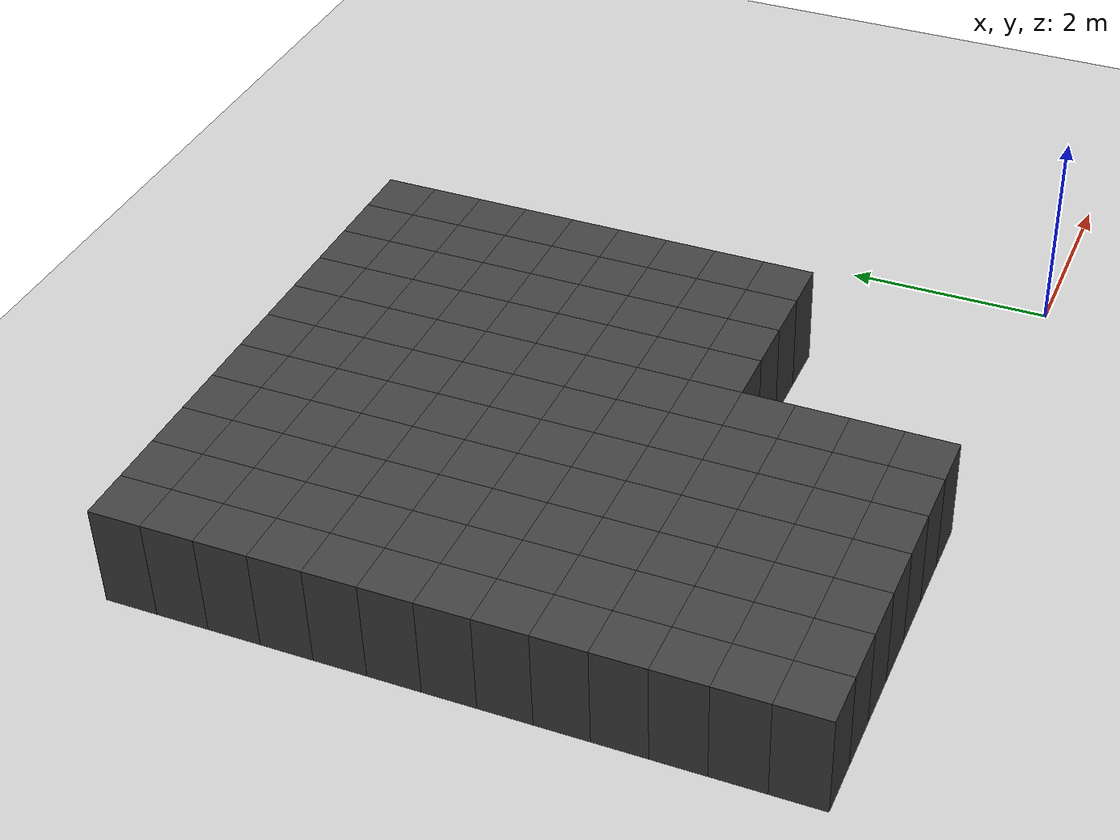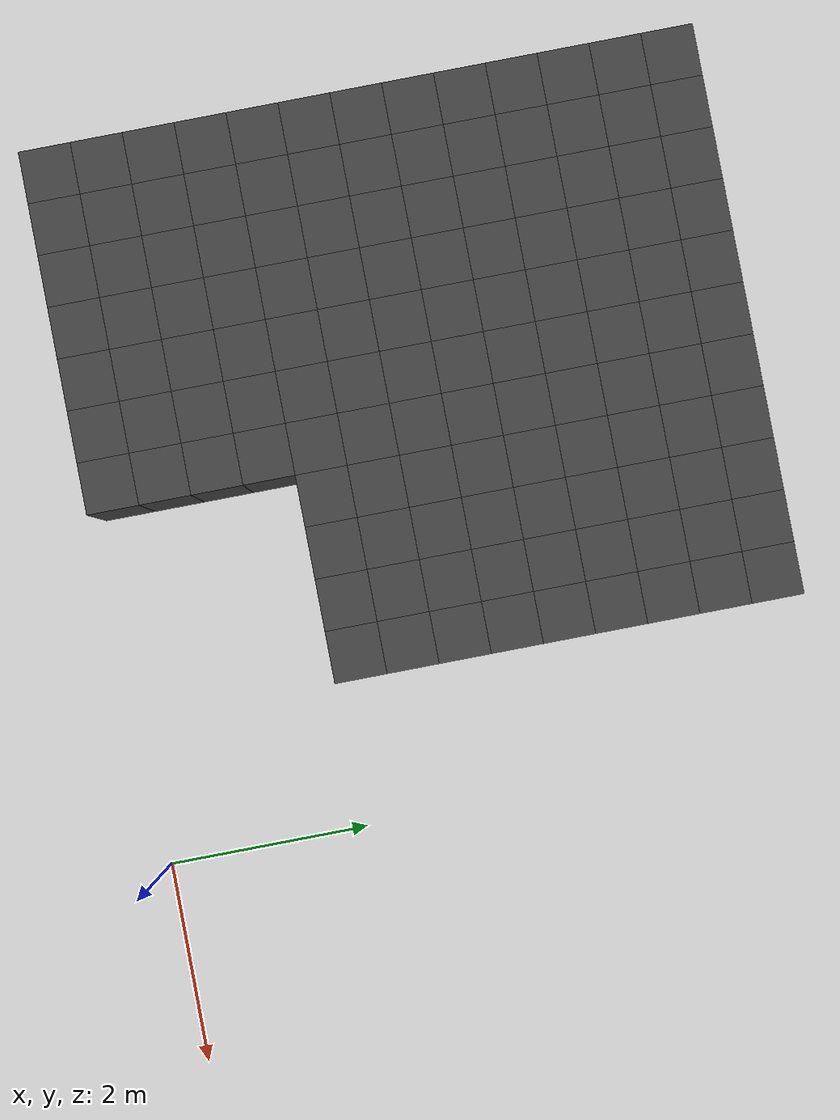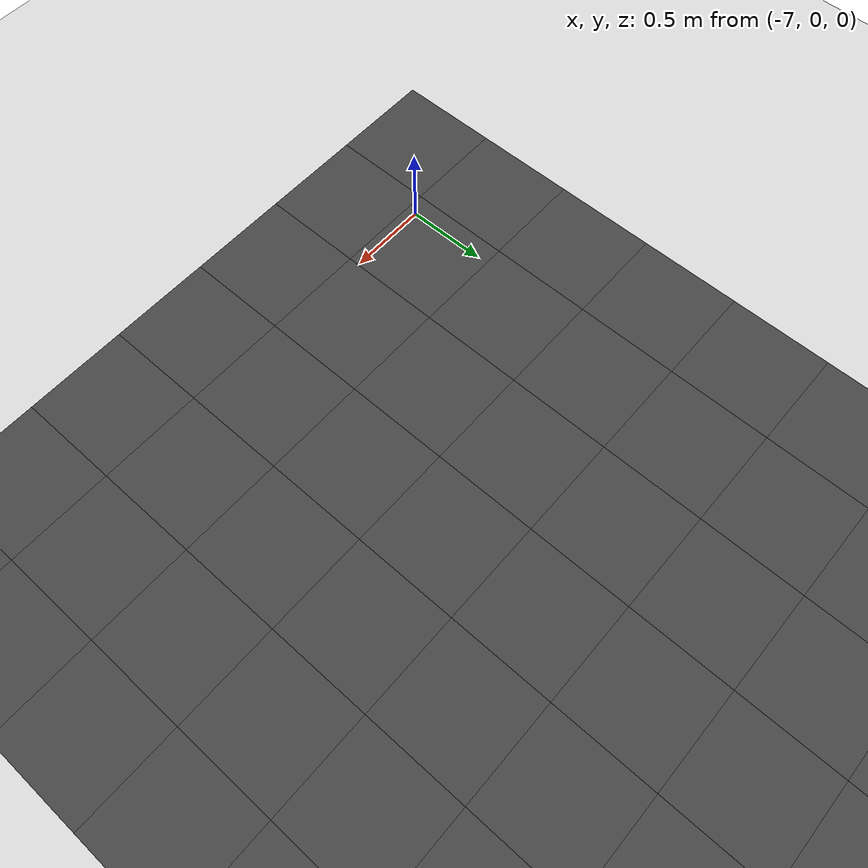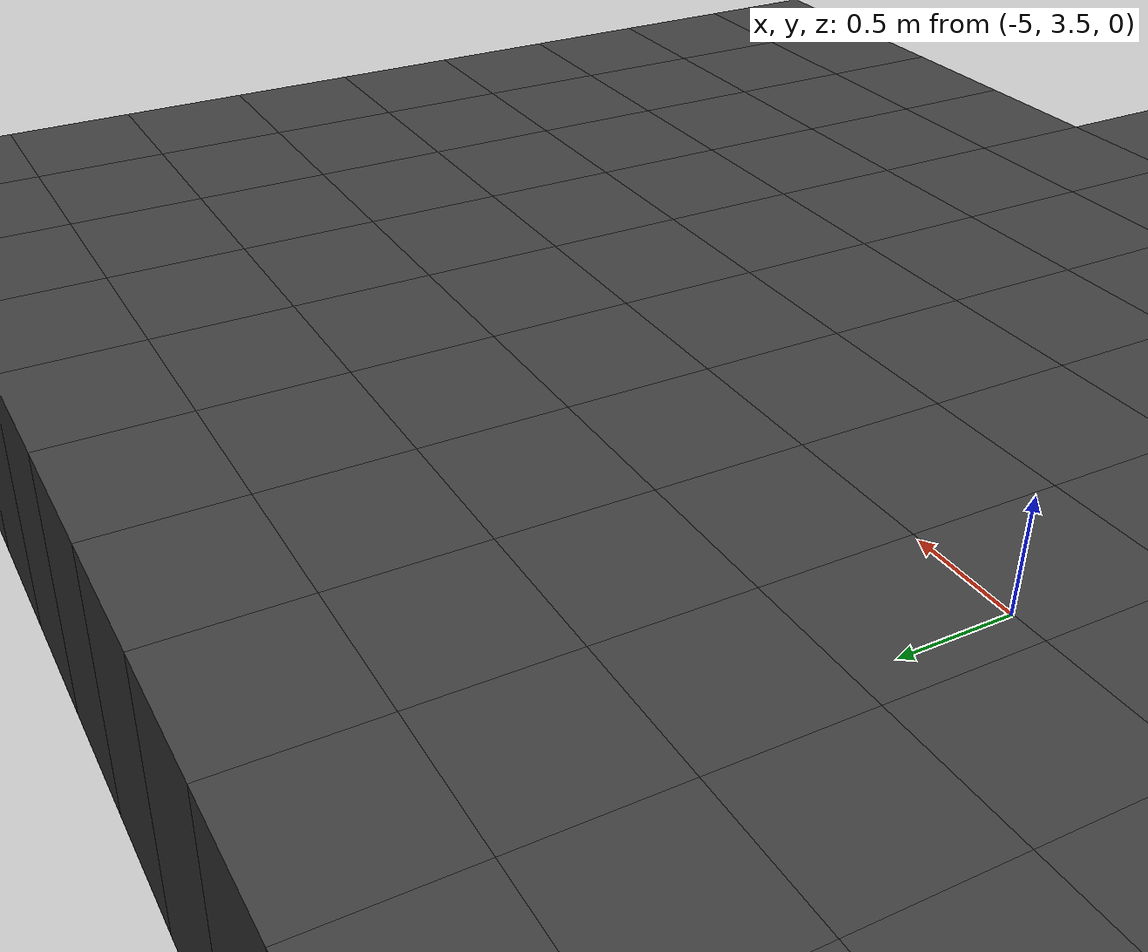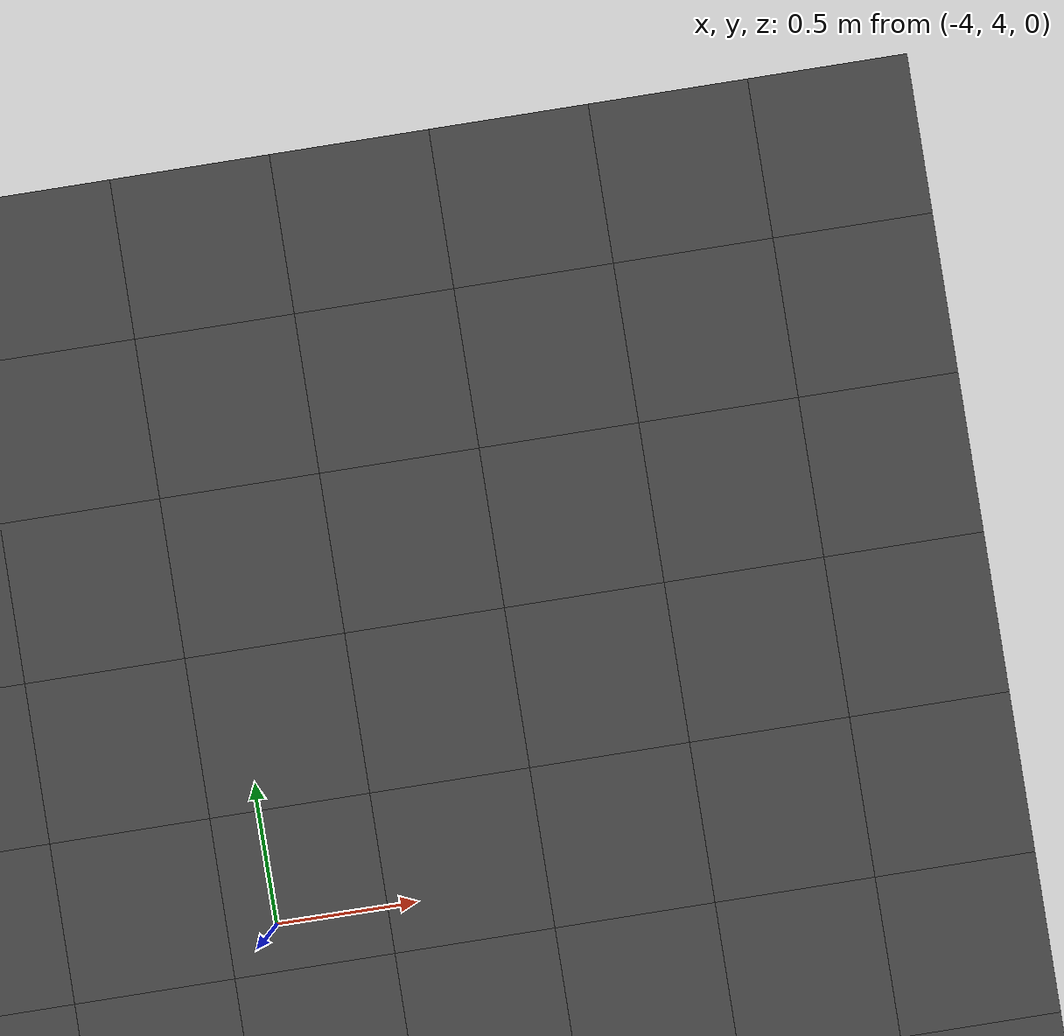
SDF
<sdf version="1.7">
 <world name="map_10777">
  <model name="ground_plane">
   <static>true</static>
   <link name="link">
    <collision name="collision">
     <geometry><plane><normal>0 0 1</normal><size>200 200</size></plane></geometry>
    </collision>
    <visual name="visual">
     <geometry><plane><normal>0 0 1</normal><size>200 200</size></plane></geometry>
     <material><ambient>0.8 0.8 0.8 1</ambient><diffuse>0.8 0.8 0.8 1</diffuse></material>
    </visual>
   </link>
  </model>
  <model name="maze_environment">
   <static>true</static>
   <link name="wall_581">
    <pose>-6.750 6.250 0.500 0 0 0</pose>
    <collision name="col"><geometry><box><size>0.5 0.5 1.0</size></box></geometry></collision>
    <visual name="vis">
     <geometry><box><size>0.5 0.5 1.0</size></box></geometry>
     <material><ambient>0.15 0.15 0.15 1</ambient><diffuse>0.25 0.25 0.25 1</diffuse></material>
    </visual>
   </link>
   <link name="wall_582">
    <pose>-6.250 6.250 0.500 0 0 0</pose>
    <collision name="col"><geometry><box><size>0.5 0.5 1.0</size></box></geometry></collision>
    <visual name="vis">
     <geometry><box><size>0.5 0.5 1.0</size></box></geometry>
     <material><ambient>0.15 0.15 0.15 1</ambient><diffuse>0.25 0.25 0.25 1</diffuse></material>
    </visual>
   </link>
   <link name="wall_583">
    <pose>-5.750 6.250 0.500 0 0 0</pose>
    <collision name="col"><geometry><box><size>0.5 0.5 1.0</size></box></geometry></collision>
    <visual name="vis">
     <geometry><box><size>0.5 0.5 1.0</size></box></geometry>
     <material><ambient>0.15 0.15 0.15 1</ambient><diffuse>0.25 0.25 0.25 1</diffuse></material>
    </visual>
   </link>
   <link name="wall_584">
    <pose>-5.250 6.250 0.500 0 0 0</pose>
    <collision name="col"><geometry><box><size>0.5 0.5 1.0</size></box></geometry></collision>
    <visual name="vis">
     <geometry><box><size>0.5 0.5 1.0</size></box></geometry>
     <material><ambient>0.15 0.15 0.15 1</ambient><diffuse>0.25 0.25 0.25 1</diffuse></material>
    </visual>
   </link>
   <link name="wall_585">
    <pose>-4.750 6.250 0.500 0 0 0</pose>
    <collision name="col"><geometry><box><size>0.5 0.5 1.0</size></box></geometry></collision>
    <visual name="vis">
     <geometry><box><size>0.5 0.5 1.0</size></box></geometry>
     <material><ambient>0.15 0.15 0.15 1</ambient><diffuse>0.25 0.25 0.25 1</diffuse></material>
    </visual>
   </link>
   <link name="wall_586">
    <pose>-4.250 6.250 0.500 0 0 0</pose>
    <collision name="col"><geometry><box><size>0.5 0.5 1.0</size></box></geometry></collision>
    <visual name="vis">
     <geometry><box><size>0.5 0.5 1.0</size></box></geometry>
     <material><ambient>0.15 0.15 0.15 1</ambient><diffuse>0.25 0.25 0.25 1</diffuse></material>
    </visual>
   </link>
   <link name="wall_587">
    <pose>-3.750 6.250 0.500 0 0 0</pose>
    <collision name="col"><geometry><box><size>0.5 0.5 1.0</size></box></geometry></collision>
    <visual name="vis">
     <geometry><box><size>0.5 0.5 1.0</size></box></geometry>
     <material><ambient>0.15 0.15 0.15 1</ambient><diffuse>0.25 0.25 0.25 1</diffuse></material>
    </visual>
   </link>
   <link name="wall_588">
    <pose>-3.250 6.250 0.500 0 0 0</pose>
    <collision name="col"><geometry><box><size>0.5 0.5 1.0</size></box></geometry></collision>
    <visual name="vis">
     <geometry><box><size>0.5 0.5 1.0</size></box></geometry>
     <material><ambient>0.15 0.15 0.15 1</ambient><diffuse>0.25 0.25 0.25 1</diffuse></material>
    </visual>
   </link>
   <link name="wall_589">
    <pose>-2.750 6.250 0.500 0 0 0</pose>
    <collision name="col"><geometry><box><size>0.5 0.5 1.0</size></box></geometry></collision>
    <visual name="vis">
     <geometry><box><size>0.5 0.5 1.0</size></box></geometry>
     <material><ambient>0.15 0.15 0.15 1</ambient><diffuse>0.25 0.25 0.25 1</diffuse></material>
    </visual>
   </link>
   <link name="wall_590">
    <pose>-2.250 6.250 0.500 0 0 0</pose>
    <collision name="col"><geometry><box><size>0.5 0.5 1.0</size></box></geometry></collision>
    <visual name="vis">
     <geometry><box><size>0.5 0.5 1.0</size></box></geometry>
     <material><ambient>0.15 0.15 0.15 1</ambient><diffuse>0.25 0.25 0.25 1</diffuse></material>
    </visual>
   </link>
   <link name="wall_591">
    <pose>-1.750 6.250 0.500 0 0 0</pose>
    <collision name="col"><geometry><box><size>0.5 0.5 1.0</size></box></geometry></collision>
    <visual name="vis">
     <geometry><box><size>0.5 0.5 1.0</size></box></geometry>
     <material><ambient>0.15 0.15 0.15 1</ambient><diffuse>0.25 0.25 0.25 1</diffuse></material>
    </visual>
   </link>
   <link name="wall_622">
    <pose>-6.750 5.750 0.500 0 0 0</pose>
    <collision name="col"><geometry><box><size>0.5 0.5 1.0</size></box></geometry></collision>
    <visual name="vis">
     <geometry><box><size>0.5 0.5 1.0</size></box></geometry>
     <material><ambient>0.15 0.15 0.15 1</ambient><diffuse>0.25 0.25 0.25 1</diffuse></material>
    </visual>
   </link>
   <link name="wall_623">
    <pose>-6.250 5.750 0.500 0 0 0</pose>
    <collision name="col"><geometry><box><size>0.5 0.5 1.0</size></box></geometry></collision>
    <visual name="vis">
     <geometry><box><size>0.5 0.5 1.0</size></box></geometry>
     <material><ambient>0.15 0.15 0.15 1</ambient><diffuse>0.25 0.25 0.25 1</diffuse></material>
    </visual>
   </link>
   <link name="wall_624">
    <pose>-5.750 5.750 0.500 0 0 0</pose>
    <collision name="col"><geometry><box><size>0.5 0.5 1.0</size></box></geometry></collision>
    <visual name="vis">
     <geometry><box><size>0.5 0.5 1.0</size></box></geometry>
     <material><ambient>0.15 0.15 0.15 1</ambient><diffuse>0.25 0.25 0.25 1</diffuse></material>
    </visual>
   </link>
   <link name="wall_625">
    <pose>-5.250 5.750 0.500 0 0 0</pose>
    <collision name="col"><geometry><box><size>0.5 0.5 1.0</size></box></geometry></collision>
    <visual name="vis">
     <geometry><box><size>0.5 0.5 1.0</size></box></geometry>
     <material><ambient>0.15 0.15 0.15 1</ambient><diffuse>0.25 0.25 0.25 1</diffuse></material>
    </visual>
   </link>
   <link name="wall_626">
    <pose>-4.750 5.750 0.500 0 0 0</pose>
    <collision name="col"><geometry><box><size>0.5 0.5 1.0</size></box></geometry></collision>
    <visual name="vis">
     <geometry><box><size>0.5 0.5 1.0</size></box></geometry>
     <material><ambient>0.15 0.15 0.15 1</ambient><diffuse>0.25 0.25 0.25 1</diffuse></material>
    </visual>
   </link>
   <link name="wall_627">
    <pose>-4.250 5.750 0.500 0 0 0</pose>
    <collision name="col"><geometry><box><size>0.5 0.5 1.0</size></box></geometry></collision>
    <visual name="vis">
     <geometry><box><size>0.5 0.5 1.0</size></box></geometry>
     <material><ambient>0.15 0.15 0.15 1</ambient><diffuse>0.25 0.25 0.25 1</diffuse></material>
    </visual>
   </link>
   <link name="wall_628">
    <pose>-3.750 5.750 0.500 0 0 0</pose>
    <collision name="col"><geometry><box><size>0.5 0.5 1.0</size></box></geometry></collision>
    <visual name="vis">
     <geometry><box><size>0.5 0.5 1.0</size></box></geometry>
     <material><ambient>0.15 0.15 0.15 1</ambient><diffuse>0.25 0.25 0.25 1</diffuse></material>
    </visual>
   </link>
   <link name="wall_629">
    <pose>-3.250 5.750 0.500 0 0 0</pose>
    <collision name="col"><geometry><box><size>0.5 0.5 1.0</size></box></geometry></collision>
    <visual name="vis">
     <geometry><box><size>0.5 0.5 1.0</size></box></geometry>
     <material><ambient>0.15 0.15 0.15 1</ambient><diffuse>0.25 0.25 0.25 1</diffuse></material>
    </visual>
   </link>
   <link name="wall_630">
    <pose>-2.750 5.750 0.500 0 0 0</pose>
    <collision name="col"><geometry><box><size>0.5 0.5 1.0</size></box></geometry></collision>
    <visual name="vis">
     <geometry><box><size>0.5 0.5 1.0</size></box></geometry>
     <material><ambient>0.15 0.15 0.15 1</ambient><diffuse>0.25 0.25 0.25 1</diffuse></material>
    </visual>
   </link>
   <link name="wall_631">
    <pose>-2.250 5.750 0.500 0 0 0</pose>
    <collision name="col"><geometry><box><size>0.5 0.5 1.0</size></box></geometry></collision>
    <visual name="vis">
     <geometry><box><size>0.5 0.5 1.0</size></box></geometry>
     <material><ambient>0.15 0.15 0.15 1</ambient><diffuse>0.25 0.25 0.25 1</diffuse></material>
    </visual>
   </link>
   <link name="wall_632">
    <pose>-1.750 5.750 0.500 0 0 0</pose>
    <collision name="col"><geometry><box><size>0.5 0.5 1.0</size></box></geometry></collision>
    <visual name="vis">
     <geometry><box><size>0.5 0.5 1.0</size></box></geometry>
     <material><ambient>0.15 0.15 0.15 1</ambient><diffuse>0.25 0.25 0.25 1</diffuse></material>
    </visual>
   </link>
   <link name="wall_664">
    <pose>-6.750 5.250 0.500 0 0 0</pose>
    <collision name="col"><geometry><box><size>0.5 0.5 1.0</size></box></geometry></collision>
    <visual name="vis">
     <geometry><box><size>0.5 0.5 1.0</size></box></geometry>
     <material><ambient>0.15 0.15 0.15 1</ambient><diffuse>0.25 0.25 0.25 1</diffuse></material>
    </visual>
   </link>
   <link name="wall_665">
    <pose>-6.250 5.250 0.500 0 0 0</pose>
    <collision name="col"><geometry><box><size>0.5 0.5 1.0</size></box></geometry></collision>
    <visual name="vis">
     <geometry><box><size>0.5 0.5 1.0</size></box></geometry>
     <material><ambient>0.15 0.15 0.15 1</ambient><diffuse>0.25 0.25 0.25 1</diffuse></material>
    </visual>
   </link>
   <link name="wall_666">
    <pose>-5.750 5.250 0.500 0 0 0</pose>
    <collision name="col"><geometry><box><size>0.5 0.5 1.0</size></box></geometry></collision>
    <visual name="vis">
     <geometry><box><size>0.5 0.5 1.0</size></box></geometry>
     <material><ambient>0.15 0.15 0.15 1</ambient><diffuse>0.25 0.25 0.25 1</diffuse></material>
    </visual>
   </link>
   <link name="wall_667">
    <pose>-5.250 5.250 0.500 0 0 0</pose>
    <collision name="col"><geometry><box><size>0.5 0.5 1.0</size></box></geometry></collision>
    <visual name="vis">
     <geometry><box><size>0.5 0.5 1.0</size></box></geometry>
     <material><ambient>0.15 0.15 0.15 1</ambient><diffuse>0.25 0.25 0.25 1</diffuse></material>
    </visual>
   </link>
   <link name="wall_668">
    <pose>-4.750 5.250 0.500 0 0 0</pose>
    <collision name="col"><geometry><box><size>0.5 0.5 1.0</size></box></geometry></collision>
    <visual name="vis">
     <geometry><box><size>0.5 0.5 1.0</size></box></geometry>
     <material><ambient>0.15 0.15 0.15 1</ambient><diffuse>0.25 0.25 0.25 1</diffuse></material>
    </visual>
   </link>
   <link name="wall_669">
    <pose>-4.250 5.250 0.500 0 0 0</pose>
    <collision name="col"><geometry><box><size>0.5 0.5 1.0</size></box></geometry></collision>
    <visual name="vis">
     <geometry><box><size>0.5 0.5 1.0</size></box></geometry>
     <material><ambient>0.15 0.15 0.15 1</ambient><diffuse>0.25 0.25 0.25 1</diffuse></material>
    </visual>
   </link>
   <link name="wall_670">
    <pose>-3.750 5.250 0.500 0 0 0</pose>
    <collision name="col"><geometry><box><size>0.5 0.5 1.0</size></box></geometry></collision>
    <visual name="vis">
     <geometry><box><size>0.5 0.5 1.0</size></box></geometry>
     <material><ambient>0.15 0.15 0.15 1</ambient><diffuse>0.25 0.25 0.25 1</diffuse></material>
    </visual>
   </link>
   <link name="wall_671">
    <pose>-3.250 5.250 0.500 0 0 0</pose>
    <collision name="col"><geometry><box><size>0.5 0.5 1.0</size></box></geometry></collision>
    <visual name="vis">
     <geometry><box><size>0.5 0.5 1.0</size></box></geometry>
     <material><ambient>0.15 0.15 0.15 1</ambient><diffuse>0.25 0.25 0.25 1</diffuse></material>
    </visual>
   </link>
   <link name="wall_672">
    <pose>-2.750 5.250 0.500 0 0 0</pose>
    <collision name="col"><geometry><box><size>0.5 0.5 1.0</size></box></geometry></collision>
    <visual name="vis">
     <geometry><box><size>0.5 0.5 1.0</size></box></geometry>
     <material><ambient>0.15 0.15 0.15 1</ambient><diffuse>0.25 0.25 0.25 1</diffuse></material>
    </visual>
   </link>
   <link name="wall_673">
    <pose>-2.250 5.250 0.500 0 0 0</pose>
    <collision name="col"><geometry><box><size>0.5 0.5 1.0</size></box></geometry></collision>
    <visual name="vis">
     <geometry><box><size>0.5 0.5 1.0</size></box></geometry>
     <material><ambient>0.15 0.15 0.15 1</ambient><diffuse>0.25 0.25 0.25 1</diffuse></material>
    </visual>
   </link>
   <link name="wall_674">
    <pose>-1.750 5.250 0.500 0 0 0</pose>
    <collision name="col"><geometry><box><size>0.5 0.5 1.0</size></box></geometry></collision>
    <visual name="vis">
     <geometry><box><size>0.5 0.5 1.0</size></box></geometry>
     <material><ambient>0.15 0.15 0.15 1</ambient><diffuse>0.25 0.25 0.25 1</diffuse></material>
    </visual>
   </link>
   <link name="wall_706">
    <pose>-6.750 4.750 0.500 0 0 0</pose>
    <collision name="col"><geometry><box><size>0.5 0.5 1.0</size></box></geometry></collision>
    <visual name="vis">
     <geometry><box><size>0.5 0.5 1.0</size></box></geometry>
     <material><ambient>0.15 0.15 0.15 1</ambient><diffuse>0.25 0.25 0.25 1</diffuse></material>
    </visual>
   </link>
   <link name="wall_707">
    <pose>-6.250 4.750 0.500 0 0 0</pose>
    <collision name="col"><geometry><box><size>0.5 0.5 1.0</size></box></geometry></collision>
    <visual name="vis">
     <geometry><box><size>0.5 0.5 1.0</size></box></geometry>
     <material><ambient>0.15 0.15 0.15 1</ambient><diffuse>0.25 0.25 0.25 1</diffuse></material>
    </visual>
   </link>
   <link name="wall_708">
    <pose>-5.750 4.750 0.500 0 0 0</pose>
    <collision name="col"><geometry><box><size>0.5 0.5 1.0</size></box></geometry></collision>
    <visual name="vis">
     <geometry><box><size>0.5 0.5 1.0</size></box></geometry>
     <material><ambient>0.15 0.15 0.15 1</ambient><diffuse>0.25 0.25 0.25 1</diffuse></material>
    </visual>
   </link>
   <link name="wall_709">
    <pose>-5.250 4.750 0.500 0 0 0</pose>
    <collision name="col"><geometry><box><size>0.5 0.5 1.0</size></box></geometry></collision>
    <visual name="vis">
     <geometry><box><size>0.5 0.5 1.0</size></box></geometry>
     <material><ambient>0.15 0.15 0.15 1</ambient><diffuse>0.25 0.25 0.25 1</diffuse></material>
    </visual>
   </link>
   <link name="wall_710">
    <pose>-4.750 4.750 0.500 0 0 0</pose>
    <collision name="col"><geometry><box><size>0.5 0.5 1.0</size></box></geometry></collision>
    <visual name="vis">
     <geometry><box><size>0.5 0.5 1.0</size></box></geometry>
     <material><ambient>0.15 0.15 0.15 1</ambient><diffuse>0.25 0.25 0.25 1</diffuse></material>
    </visual>
   </link>
   <link name="wall_711">
    <pose>-4.250 4.750 0.500 0 0 0</pose>
    <collision name="col"><geometry><box><size>0.5 0.5 1.0</size></box></geometry></collision>
    <visual name="vis">
     <geometry><box><size>0.5 0.5 1.0</size></box></geometry>
     <material><ambient>0.15 0.15 0.15 1</ambient><diffuse>0.25 0.25 0.25 1</diffuse></material>
    </visual>
   </link>
   <link name="wall_712">
    <pose>-3.750 4.750 0.500 0 0 0</pose>
    <collision name="col"><geometry><box><size>0.5 0.5 1.0</size></box></geometry></collision>
    <visual name="vis">
     <geometry><box><size>0.5 0.5 1.0</size></box></geometry>
     <material><ambient>0.15 0.15 0.15 1</ambient><diffuse>0.25 0.25 0.25 1</diffuse></material>
    </visual>
   </link>
   <link name="wall_713">
    <pose>-3.250 4.750 0.500 0 0 0</pose>
    <collision name="col"><geometry><box><size>0.5 0.5 1.0</size></box></geometry></collision>
    <visual name="vis">
     <geometry><box><size>0.5 0.5 1.0</size></box></geometry>
     <material><ambient>0.15 0.15 0.15 1</ambient><diffuse>0.25 0.25 0.25 1</diffuse></material>
    </visual>
   </link>
   <link name="wall_714">
    <pose>-2.750 4.750 0.500 0 0 0</pose>
    <collision name="col"><geometry><box><size>0.5 0.5 1.0</size></box></geometry></collision>
    <visual name="vis">
     <geometry><box><size>0.5 0.5 1.0</size></box></geometry>
     <material><ambient>0.15 0.15 0.15 1</ambient><diffuse>0.25 0.25 0.25 1</diffuse></material>
    </visual>
   </link>
   <link name="wall_715">
    <pose>-2.250 4.750 0.500 0 0 0</pose>
    <collision name="col"><geometry><box><size>0.5 0.5 1.0</size></box></geometry></collision>
    <visual name="vis">
     <geometry><box><size>0.5 0.5 1.0</size></box></geometry>
     <material><ambient>0.15 0.15 0.15 1</ambient><diffuse>0.25 0.25 0.25 1</diffuse></material>
    </visual>
   </link>
   <link name="wall_716">
    <pose>-1.750 4.750 0.500 0 0 0</pose>
    <collision name="col"><geometry><box><size>0.5 0.5 1.0</size></box></geometry></collision>
    <visual name="vis">
     <geometry><box><size>0.5 0.5 1.0</size></box></geometry>
     <material><ambient>0.15 0.15 0.15 1</ambient><diffuse>0.25 0.25 0.25 1</diffuse></material>
    </visual>
   </link>
   <link name="wall_754">
    <pose>-6.750 4.250 0.500 0 0 0</pose>
    <collision name="col"><geometry><box><size>0.5 0.5 1.0</size></box></geometry></collision>
    <visual name="vis">
     <geometry><box><size>0.5 0.5 1.0</size></box></geometry>
     <material><ambient>0.15 0.15 0.15 1</ambient><diffuse>0.25 0.25 0.25 1</diffuse></material>
    </visual>
   </link>
   <link name="wall_755">
    <pose>-6.250 4.250 0.500 0 0 0</pose>
    <collision name="col"><geometry><box><size>0.5 0.5 1.0</size></box></geometry></collision>
    <visual name="vis">
     <geometry><box><size>0.5 0.5 1.0</size></box></geometry>
     <material><ambient>0.15 0.15 0.15 1</ambient><diffuse>0.25 0.25 0.25 1</diffuse></material>
    </visual>
   </link>
   <link name="wall_756">
    <pose>-5.750 4.250 0.500 0 0 0</pose>
    <collision name="col"><geometry><box><size>0.5 0.5 1.0</size></box></geometry></collision>
    <visual name="vis">
     <geometry><box><size>0.5 0.5 1.0</size></box></geometry>
     <material><ambient>0.15 0.15 0.15 1</ambient><diffuse>0.25 0.25 0.25 1</diffuse></material>
    </visual>
   </link>
   <link name="wall_757">
    <pose>-5.250 4.250 0.500 0 0 0</pose>
    <collision name="col"><geometry><box><size>0.5 0.5 1.0</size></box></geometry></collision>
    <visual name="vis">
     <geometry><box><size>0.5 0.5 1.0</size></box></geometry>
     <material><ambient>0.15 0.15 0.15 1</ambient><diffuse>0.25 0.25 0.25 1</diffuse></material>
    </visual>
   </link>
   <link name="wall_758">
    <pose>-4.750 4.250 0.500 0 0 0</pose>
    <collision name="col"><geometry><box><size>0.5 0.5 1.0</size></box></geometry></collision>
    <visual name="vis">
     <geometry><box><size>0.5 0.5 1.0</size></box></geometry>
     <material><ambient>0.15 0.15 0.15 1</ambient><diffuse>0.25 0.25 0.25 1</diffuse></material>
    </visual>
   </link>
   <link name="wall_759">
    <pose>-4.250 4.250 0.500 0 0 0</pose>
    <collision name="col"><geometry><box><size>0.5 0.5 1.0</size></box></geometry></collision>
    <visual name="vis">
     <geometry><box><size>0.5 0.5 1.0</size></box></geometry>
     <material><ambient>0.15 0.15 0.15 1</ambient><diffuse>0.25 0.25 0.25 1</diffuse></material>
    </visual>
   </link>
   <link name="wall_760">
    <pose>-3.750 4.250 0.500 0 0 0</pose>
    <collision name="col"><geometry><box><size>0.5 0.5 1.0</size></box></geometry></collision>
    <visual name="vis">
     <geometry><box><size>0.5 0.5 1.0</size></box></geometry>
     <material><ambient>0.15 0.15 0.15 1</ambient><diffuse>0.25 0.25 0.25 1</diffuse></material>
    </visual>
   </link>
   <link name="wall_761">
    <pose>-3.250 4.250 0.500 0 0 0</pose>
    <collision name="col"><geometry><box><size>0.5 0.5 1.0</size></box></geometry></collision>
    <visual name="vis">
     <geometry><box><size>0.5 0.5 1.0</size></box></geometry>
     <material><ambient>0.15 0.15 0.15 1</ambient><diffuse>0.25 0.25 0.25 1</diffuse></material>
    </visual>
   </link>
   <link name="wall_762">
    <pose>-2.750 4.250 0.500 0 0 0</pose>
    <collision name="col"><geometry><box><size>0.5 0.5 1.0</size></box></geometry></collision>
    <visual name="vis">
     <geometry><box><size>0.5 0.5 1.0</size></box></geometry>
     <material><ambient>0.15 0.15 0.15 1</ambient><diffuse>0.25 0.25 0.25 1</diffuse></material>
    </visual>
   </link>
   <link name="wall_763">
    <pose>-2.250 4.250 0.500 0 0 0</pose>
    <collision name="col"><geometry><box><size>0.5 0.5 1.0</size></box></geometry></collision>
    <visual name="vis">
     <geometry><box><size>0.5 0.5 1.0</size></box></geometry>
     <material><ambient>0.15 0.15 0.15 1</ambient><diffuse>0.25 0.25 0.25 1</diffuse></material>
    </visual>
   </link>
   <link name="wall_764">
    <pose>-1.750 4.250 0.500 0 0 0</pose>
    <collision name="col"><geometry><box><size>0.5 0.5 1.0</size></box></geometry></collision>
    <visual name="vis">
     <geometry><box><size>0.5 0.5 1.0</size></box></geometry>
     <material><ambient>0.15 0.15 0.15 1</ambient><diffuse>0.25 0.25 0.25 1</diffuse></material>
    </visual>
   </link>
   <link name="wall_802">
    <pose>-6.750 3.750 0.500 0 0 0</pose>
    <collision name="col"><geometry><box><size>0.5 0.5 1.0</size></box></geometry></collision>
    <visual name="vis">
     <geometry><box><size>0.5 0.5 1.0</size></box></geometry>
     <material><ambient>0.15 0.15 0.15 1</ambient><diffuse>0.25 0.25 0.25 1</diffuse></material>
    </visual>
   </link>
   <link name="wall_803">
    <pose>-6.250 3.750 0.500 0 0 0</pose>
    <collision name="col"><geometry><box><size>0.5 0.5 1.0</size></box></geometry></collision>
    <visual name="vis">
     <geometry><box><size>0.5 0.5 1.0</size></box></geometry>
     <material><ambient>0.15 0.15 0.15 1</ambient><diffuse>0.25 0.25 0.25 1</diffuse></material>
    </visual>
   </link>
   <link name="wall_804">
    <pose>-5.750 3.750 0.500 0 0 0</pose>
    <collision name="col"><geometry><box><size>0.5 0.5 1.0</size></box></geometry></collision>
    <visual name="vis">
     <geometry><box><size>0.5 0.5 1.0</size></box></geometry>
     <material><ambient>0.15 0.15 0.15 1</ambient><diffuse>0.25 0.25 0.25 1</diffuse></material>
    </visual>
   </link>
   <link name="wall_805">
    <pose>-5.250 3.750 0.500 0 0 0</pose>
    <collision name="col"><geometry><box><size>0.5 0.5 1.0</size></box></geometry></collision>
    <visual name="vis">
     <geometry><box><size>0.5 0.5 1.0</size></box></geometry>
     <material><ambient>0.15 0.15 0.15 1</ambient><diffuse>0.25 0.25 0.25 1</diffuse></material>
    </visual>
   </link>
   <link name="wall_806">
    <pose>-4.750 3.750 0.500 0 0 0</pose>
    <collision name="col"><geometry><box><size>0.5 0.5 1.0</size></box></geometry></collision>
    <visual name="vis">
     <geometry><box><size>0.5 0.5 1.0</size></box></geometry>
     <material><ambient>0.15 0.15 0.15 1</ambient><diffuse>0.25 0.25 0.25 1</diffuse></material>
    </visual>
   </link>
   <link name="wall_807">
    <pose>-4.250 3.750 0.500 0 0 0</pose>
    <collision name="col"><geometry><box><size>0.5 0.5 1.0</size></box></geometry></collision>
    <visual name="vis">
     <geometry><box><size>0.5 0.5 1.0</size></box></geometry>
     <material><ambient>0.15 0.15 0.15 1</ambient><diffuse>0.25 0.25 0.25 1</diffuse></material>
    </visual>
   </link>
   <link name="wall_808">
    <pose>-3.750 3.750 0.500 0 0 0</pose>
    <collision name="col"><geometry><box><size>0.5 0.5 1.0</size></box></geometry></collision>
    <visual name="vis">
     <geometry><box><size>0.5 0.5 1.0</size></box></geometry>
     <material><ambient>0.15 0.15 0.15 1</ambient><diffuse>0.25 0.25 0.25 1</diffuse></material>
    </visual>
   </link>
   <link name="wall_809">
    <pose>-3.250 3.750 0.500 0 0 0</pose>
    <collision name="col"><geometry><box><size>0.5 0.5 1.0</size></box></geometry></collision>
    <visual name="vis">
     <geometry><box><size>0.5 0.5 1.0</size></box></geometry>
     <material><ambient>0.15 0.15 0.15 1</ambient><diffuse>0.25 0.25 0.25 1</diffuse></material>
    </visual>
   </link>
   <link name="wall_810">
    <pose>-2.750 3.750 0.500 0 0 0</pose>
    <collision name="col"><geometry><box><size>0.5 0.5 1.0</size></box></geometry></collision>
    <visual name="vis">
     <geometry><box><size>0.5 0.5 1.0</size></box></geometry>
     <material><ambient>0.15 0.15 0.15 1</ambient><diffuse>0.25 0.25 0.25 1</diffuse></material>
    </visual>
   </link>
   <link name="wall_811">
    <pose>-2.250 3.750 0.500 0 0 0</pose>
    <collision name="col"><geometry><box><size>0.5 0.5 1.0</size></box></geometry></collision>
    <visual name="vis">
     <geometry><box><size>0.5 0.5 1.0</size></box></geometry>
     <material><ambient>0.15 0.15 0.15 1</ambient><diffuse>0.25 0.25 0.25 1</diffuse></material>
    </visual>
   </link>
   <link name="wall_812">
    <pose>-1.750 3.750 0.500 0 0 0</pose>
    <collision name="col"><geometry><box><size>0.5 0.5 1.0</size></box></geometry></collision>
    <visual name="vis">
     <geometry><box><size>0.5 0.5 1.0</size></box></geometry>
     <material><ambient>0.15 0.15 0.15 1</ambient><diffuse>0.25 0.25 0.25 1</diffuse></material>
    </visual>
   </link>
   <link name="wall_850">
    <pose>-6.750 3.250 0.500 0 0 0</pose>
    <collision name="col"><geometry><box><size>0.5 0.5 1.0</size></box></geometry></collision>
    <visual name="vis">
     <geometry><box><size>0.5 0.5 1.0</size></box></geometry>
     <material><ambient>0.15 0.15 0.15 1</ambient><diffuse>0.25 0.25 0.25 1</diffuse></material>
    </visual>
   </link>
   <link name="wall_851">
    <pose>-6.250 3.250 0.500 0 0 0</pose>
    <collision name="col"><geometry><box><size>0.5 0.5 1.0</size></box></geometry></collision>
    <visual name="vis">
     <geometry><box><size>0.5 0.5 1.0</size></box></geometry>
     <material><ambient>0.15 0.15 0.15 1</ambient><diffuse>0.25 0.25 0.25 1</diffuse></material>
    </visual>
   </link>
   <link name="wall_852">
    <pose>-5.750 3.250 0.500 0 0 0</pose>
    <collision name="col"><geometry><box><size>0.5 0.5 1.0</size></box></geometry></collision>
    <visual name="vis">
     <geometry><box><size>0.5 0.5 1.0</size></box></geometry>
     <material><ambient>0.15 0.15 0.15 1</ambient><diffuse>0.25 0.25 0.25 1</diffuse></material>
    </visual>
   </link>
   <link name="wall_853">
    <pose>-5.250 3.250 0.500 0 0 0</pose>
    <collision name="col"><geometry><box><size>0.5 0.5 1.0</size></box></geometry></collision>
    <visual name="vis">
     <geometry><box><size>0.5 0.5 1.0</size></box></geometry>
     <material><ambient>0.15 0.15 0.15 1</ambient><diffuse>0.25 0.25 0.25 1</diffuse></material>
    </visual>
   </link>
   <link name="wall_854">
    <pose>-4.750 3.250 0.500 0 0 0</pose>
    <collision name="col"><geometry><box><size>0.5 0.5 1.0</size></box></geometry></collision>
    <visual name="vis">
     <geometry><box><size>0.5 0.5 1.0</size></box></geometry>
     <material><ambient>0.15 0.15 0.15 1</ambient><diffuse>0.25 0.25 0.25 1</diffuse></material>
    </visual>
   </link>
   <link name="wall_855">
    <pose>-4.250 3.250 0.500 0 0 0</pose>
    <collision name="col"><geometry><box><size>0.5 0.5 1.0</size></box></geometry></collision>
    <visual name="vis">
     <geometry><box><size>0.5 0.5 1.0</size></box></geometry>
     <material><ambient>0.15 0.15 0.15 1</ambient><diffuse>0.25 0.25 0.25 1</diffuse></material>
    </visual>
   </link>
   <link name="wall_856">
    <pose>-3.750 3.250 0.500 0 0 0</pose>
    <collision name="col"><geometry><box><size>0.5 0.5 1.0</size></box></geometry></collision>
    <visual name="vis">
     <geometry><box><size>0.5 0.5 1.0</size></box></geometry>
     <material><ambient>0.15 0.15 0.15 1</ambient><diffuse>0.25 0.25 0.25 1</diffuse></material>
    </visual>
   </link>
   <link name="wall_857">
    <pose>-3.250 3.250 0.500 0 0 0</pose>
    <collision name="col"><geometry><box><size>0.5 0.5 1.0</size></box></geometry></collision>
    <visual name="vis">
     <geometry><box><size>0.5 0.5 1.0</size></box></geometry>
     <material><ambient>0.15 0.15 0.15 1</ambient><diffuse>0.25 0.25 0.25 1</diffuse></material>
    </visual>
   </link>
   <link name="wall_858">
    <pose>-2.750 3.250 0.500 0 0 0</pose>
    <collision name="col"><geometry><box><size>0.5 0.5 1.0</size></box></geometry></collision>
    <visual name="vis">
     <geometry><box><size>0.5 0.5 1.0</size></box></geometry>
     <material><ambient>0.15 0.15 0.15 1</ambient><diffuse>0.25 0.25 0.25 1</diffuse></material>
    </visual>
   </link>
   <link name="wall_859">
    <pose>-2.250 3.250 0.500 0 0 0</pose>
    <collision name="col"><geometry><box><size>0.5 0.5 1.0</size></box></geometry></collision>
    <visual name="vis">
     <geometry><box><size>0.5 0.5 1.0</size></box></geometry>
     <material><ambient>0.15 0.15 0.15 1</ambient><diffuse>0.25 0.25 0.25 1</diffuse></material>
    </visual>
   </link>
   <link name="wall_860">
    <pose>-1.750 3.250 0.500 0 0 0</pose>
    <collision name="col"><geometry><box><size>0.5 0.5 1.0</size></box></geometry></collision>
    <visual name="vis">
     <geometry><box><size>0.5 0.5 1.0</size></box></geometry>
     <material><ambient>0.15 0.15 0.15 1</ambient><diffuse>0.25 0.25 0.25 1</diffuse></material>
    </visual>
   </link>
   <link name="wall_898">
    <pose>-6.750 2.750 0.500 0 0 0</pose>
    <collision name="col"><geometry><box><size>0.5 0.5 1.0</size></box></geometry></collision>
    <visual name="vis">
     <geometry><box><size>0.5 0.5 1.0</size></box></geometry>
     <material><ambient>0.15 0.15 0.15 1</ambient><diffuse>0.25 0.25 0.25 1</diffuse></material>
    </visual>
   </link>
   <link name="wall_899">
    <pose>-6.250 2.750 0.500 0 0 0</pose>
    <collision name="col"><geometry><box><size>0.5 0.5 1.0</size></box></geometry></collision>
    <visual name="vis">
     <geometry><box><size>0.5 0.5 1.0</size></box></geometry>
     <material><ambient>0.15 0.15 0.15 1</ambient><diffuse>0.25 0.25 0.25 1</diffuse></material>
    </visual>
   </link>
   <link name="wall_900">
    <pose>-5.750 2.750 0.500 0 0 0</pose>
    <collision name="col"><geometry><box><size>0.5 0.5 1.0</size></box></geometry></collision>
    <visual name="vis">
     <geometry><box><size>0.5 0.5 1.0</size></box></geometry>
     <material><ambient>0.15 0.15 0.15 1</ambient><diffuse>0.25 0.25 0.25 1</diffuse></material>
    </visual>
   </link>
   <link name="wall_901">
    <pose>-5.250 2.750 0.500 0 0 0</pose>
    <collision name="col"><geometry><box><size>0.5 0.5 1.0</size></box></geometry></collision>
    <visual name="vis">
     <geometry><box><size>0.5 0.5 1.0</size></box></geometry>
     <material><ambient>0.15 0.15 0.15 1</ambient><diffuse>0.25 0.25 0.25 1</diffuse></material>
    </visual>
   </link>
   <link name="wall_902">
    <pose>-4.750 2.750 0.500 0 0 0</pose>
    <collision name="col"><geometry><box><size>0.5 0.5 1.0</size></box></geometry></collision>
    <visual name="vis">
     <geometry><box><size>0.5 0.5 1.0</size></box></geometry>
     <material><ambient>0.15 0.15 0.15 1</ambient><diffuse>0.25 0.25 0.25 1</diffuse></material>
    </visual>
   </link>
   <link name="wall_903">
    <pose>-4.250 2.750 0.500 0 0 0</pose>
    <collision name="col"><geometry><box><size>0.5 0.5 1.0</size></box></geometry></collision>
    <visual name="vis">
     <geometry><box><size>0.5 0.5 1.0</size></box></geometry>
     <material><ambient>0.15 0.15 0.15 1</ambient><diffuse>0.25 0.25 0.25 1</diffuse></material>
    </visual>
   </link>
   <link name="wall_904">
    <pose>-3.750 2.750 0.500 0 0 0</pose>
    <collision name="col"><geometry><box><size>0.5 0.5 1.0</size></box></geometry></collision>
    <visual name="vis">
     <geometry><box><size>0.5 0.5 1.0</size></box></geometry>
     <material><ambient>0.15 0.15 0.15 1</ambient><diffuse>0.25 0.25 0.25 1</diffuse></material>
    </visual>
   </link>
   <link name="wall_905">
    <pose>-3.250 2.750 0.500 0 0 0</pose>
    <collision name="col"><geometry><box><size>0.5 0.5 1.0</size></box></geometry></collision>
    <visual name="vis">
     <geometry><box><size>0.5 0.5 1.0</size></box></geometry>
     <material><ambient>0.15 0.15 0.15 1</ambient><diffuse>0.25 0.25 0.25 1</diffuse></material>
    </visual>
   </link>
   <link name="wall_906">
    <pose>-2.750 2.750 0.500 0 0 0</pose>
    <collision name="col"><geometry><box><size>0.5 0.5 1.0</size></box></geometry></collision>
    <visual name="vis">
     <geometry><box><size>0.5 0.5 1.0</size></box></geometry>
     <material><ambient>0.15 0.15 0.15 1</ambient><diffuse>0.25 0.25 0.25 1</diffuse></material>
    </visual>
   </link>
   <link name="wall_907">
    <pose>-2.250 2.750 0.500 0 0 0</pose>
    <collision name="col"><geometry><box><size>0.5 0.5 1.0</size></box></geometry></collision>
    <visual name="vis">
     <geometry><box><size>0.5 0.5 1.0</size></box></geometry>
     <material><ambient>0.15 0.15 0.15 1</ambient><diffuse>0.25 0.25 0.25 1</diffuse></material>
    </visual>
   </link>
   <link name="wall_908">
    <pose>-1.750 2.750 0.500 0 0 0</pose>
    <collision name="col"><geometry><box><size>0.5 0.5 1.0</size></box></geometry></collision>
    <visual name="vis">
     <geometry><box><size>0.5 0.5 1.0</size></box></geometry>
     <material><ambient>0.15 0.15 0.15 1</ambient><diffuse>0.25 0.25 0.25 1</diffuse></material>
    </visual>
   </link>
   <link name="wall_946">
    <pose>-6.750 2.250 0.500 0 0 0</pose>
    <collision name="col"><geometry><box><size>0.5 0.5 1.0</size></box></geometry></collision>
    <visual name="vis">
     <geometry><box><size>0.5 0.5 1.0</size></box></geometry>
     <material><ambient>0.15 0.15 0.15 1</ambient><diffuse>0.25 0.25 0.25 1</diffuse></material>
    </visual>
   </link>
   <link name="wall_947">
    <pose>-6.250 2.250 0.500 0 0 0</pose>
    <collision name="col"><geometry><box><size>0.5 0.5 1.0</size></box></geometry></collision>
    <visual name="vis">
     <geometry><box><size>0.5 0.5 1.0</size></box></geometry>
     <material><ambient>0.15 0.15 0.15 1</ambient><diffuse>0.25 0.25 0.25 1</diffuse></material>
    </visual>
   </link>
   <link name="wall_948">
    <pose>-5.750 2.250 0.500 0 0 0</pose>
    <collision name="col"><geometry><box><size>0.5 0.5 1.0</size></box></geometry></collision>
    <visual name="vis">
     <geometry><box><size>0.5 0.5 1.0</size></box></geometry>
     <material><ambient>0.15 0.15 0.15 1</ambient><diffuse>0.25 0.25 0.25 1</diffuse></material>
    </visual>
   </link>
   <link name="wall_949">
    <pose>-5.250 2.250 0.500 0 0 0</pose>
    <collision name="col"><geometry><box><size>0.5 0.5 1.0</size></box></geometry></collision>
    <visual name="vis">
     <geometry><box><size>0.5 0.5 1.0</size></box></geometry>
     <material><ambient>0.15 0.15 0.15 1</ambient><diffuse>0.25 0.25 0.25 1</diffuse></material>
    </visual>
   </link>
   <link name="wall_950">
    <pose>-4.750 2.250 0.500 0 0 0</pose>
    <collision name="col"><geometry><box><size>0.5 0.5 1.0</size></box></geometry></collision>
    <visual name="vis">
     <geometry><box><size>0.5 0.5 1.0</size></box></geometry>
     <material><ambient>0.15 0.15 0.15 1</ambient><diffuse>0.25 0.25 0.25 1</diffuse></material>
    </visual>
   </link>
   <link name="wall_951">
    <pose>-4.250 2.250 0.500 0 0 0</pose>
    <collision name="col"><geometry><box><size>0.5 0.5 1.0</size></box></geometry></collision>
    <visual name="vis">
     <geometry><box><size>0.5 0.5 1.0</size></box></geometry>
     <material><ambient>0.15 0.15 0.15 1</ambient><diffuse>0.25 0.25 0.25 1</diffuse></material>
    </visual>
   </link>
   <link name="wall_952">
    <pose>-3.750 2.250 0.500 0 0 0</pose>
    <collision name="col"><geometry><box><size>0.5 0.5 1.0</size></box></geometry></collision>
    <visual name="vis">
     <geometry><box><size>0.5 0.5 1.0</size></box></geometry>
     <material><ambient>0.15 0.15 0.15 1</ambient><diffuse>0.25 0.25 0.25 1</diffuse></material>
    </visual>
   </link>
   <link name="wall_953">
    <pose>-3.250 2.250 0.500 0 0 0</pose>
    <collision name="col"><geometry><box><size>0.5 0.5 1.0</size></box></geometry></collision>
    <visual name="vis">
     <geometry><box><size>0.5 0.5 1.0</size></box></geometry>
     <material><ambient>0.15 0.15 0.15 1</ambient><diffuse>0.25 0.25 0.25 1</diffuse></material>
    </visual>
   </link>
   <link name="wall_954">
    <pose>-2.750 2.250 0.500 0 0 0</pose>
    <collision name="col"><geometry><box><size>0.5 0.5 1.0</size></box></geometry></collision>
    <visual name="vis">
     <geometry><box><size>0.5 0.5 1.0</size></box></geometry>
     <material><ambient>0.15 0.15 0.15 1</ambient><diffuse>0.25 0.25 0.25 1</diffuse></material>
    </visual>
   </link>
   <link name="wall_955">
    <pose>-2.250 2.250 0.500 0 0 0</pose>
    <collision name="col"><geometry><box><size>0.5 0.5 1.0</size></box></geometry></collision>
    <visual name="vis">
     <geometry><box><size>0.5 0.5 1.0</size></box></geometry>
     <material><ambient>0.15 0.15 0.15 1</ambient><diffuse>0.25 0.25 0.25 1</diffuse></material>
    </visual>
   </link>
   <link name="wall_956">
    <pose>-1.750 2.250 0.500 0 0 0</pose>
    <collision name="col"><geometry><box><size>0.5 0.5 1.0</size></box></geometry></collision>
    <visual name="vis">
     <geometry><box><size>0.5 0.5 1.0</size></box></geometry>
     <material><ambient>0.15 0.15 0.15 1</ambient><diffuse>0.25 0.25 0.25 1</diffuse></material>
    </visual>
   </link>
   <link name="wall_994">
    <pose>-6.750 1.750 0.500 0 0 0</pose>
    <collision name="col"><geometry><box><size>0.5 0.5 1.0</size></box></geometry></collision>
    <visual name="vis">
     <geometry><box><size>0.5 0.5 1.0</size></box></geometry>
     <material><ambient>0.15 0.15 0.15 1</ambient><diffuse>0.25 0.25 0.25 1</diffuse></material>
    </visual>
   </link>
   <link name="wall_995">
    <pose>-6.250 1.750 0.500 0 0 0</pose>
    <collision name="col"><geometry><box><size>0.5 0.5 1.0</size></box></geometry></collision>
    <visual name="vis">
     <geometry><box><size>0.5 0.5 1.0</size></box></geometry>
     <material><ambient>0.15 0.15 0.15 1</ambient><diffuse>0.25 0.25 0.25 1</diffuse></material>
    </visual>
   </link>
   <link name="wall_996">
    <pose>-5.750 1.750 0.500 0 0 0</pose>
    <collision name="col"><geometry><box><size>0.5 0.5 1.0</size></box></geometry></collision>
    <visual name="vis">
     <geometry><box><size>0.5 0.5 1.0</size></box></geometry>
     <material><ambient>0.15 0.15 0.15 1</ambient><diffuse>0.25 0.25 0.25 1</diffuse></material>
    </visual>
   </link>
   <link name="wall_997">
    <pose>-5.250 1.750 0.500 0 0 0</pose>
    <collision name="col"><geometry><box><size>0.5 0.5 1.0</size></box></geometry></collision>
    <visual name="vis">
     <geometry><box><size>0.5 0.5 1.0</size></box></geometry>
     <material><ambient>0.15 0.15 0.15 1</ambient><diffuse>0.25 0.25 0.25 1</diffuse></material>
    </visual>
   </link>
   <link name="wall_998">
    <pose>-4.750 1.750 0.500 0 0 0</pose>
    <collision name="col"><geometry><box><size>0.5 0.5 1.0</size></box></geometry></collision>
    <visual name="vis">
     <geometry><box><size>0.5 0.5 1.0</size></box></geometry>
     <material><ambient>0.15 0.15 0.15 1</ambient><diffuse>0.25 0.25 0.25 1</diffuse></material>
    </visual>
   </link>
   <link name="wall_999">
    <pose>-4.250 1.750 0.500 0 0 0</pose>
    <collision name="col"><geometry><box><size>0.5 0.5 1.0</size></box></geometry></collision>
    <visual name="vis">
     <geometry><box><size>0.5 0.5 1.0</size></box></geometry>
     <material><ambient>0.15 0.15 0.15 1</ambient><diffuse>0.25 0.25 0.25 1</diffuse></material>
    </visual>
   </link>
   <link name="wall_1000">
    <pose>-3.750 1.750 0.500 0 0 0</pose>
    <collision name="col"><geometry><box><size>0.5 0.5 1.0</size></box></geometry></collision>
    <visual name="vis">
     <geometry><box><size>0.5 0.5 1.0</size></box></geometry>
     <material><ambient>0.15 0.15 0.15 1</ambient><diffuse>0.25 0.25 0.25 1</diffuse></material>
    </visual>
   </link>
   <link name="wall_1036">
    <pose>-6.750 1.250 0.500 0 0 0</pose>
    <collision name="col"><geometry><box><size>0.5 0.5 1.0</size></box></geometry></collision>
    <visual name="vis">
     <geometry><box><size>0.5 0.5 1.0</size></box></geometry>
     <material><ambient>0.15 0.15 0.15 1</ambient><diffuse>0.25 0.25 0.25 1</diffuse></material>
    </visual>
   </link>
   <link name="wall_1037">
    <pose>-6.250 1.250 0.500 0 0 0</pose>
    <collision name="col"><geometry><box><size>0.5 0.5 1.0</size></box></geometry></collision>
    <visual name="vis">
     <geometry><box><size>0.5 0.5 1.0</size></box></geometry>
     <material><ambient>0.15 0.15 0.15 1</ambient><diffuse>0.25 0.25 0.25 1</diffuse></material>
    </visual>
   </link>
   <link name="wall_1038">
    <pose>-5.750 1.250 0.500 0 0 0</pose>
    <collision name="col"><geometry><box><size>0.5 0.5 1.0</size></box></geometry></collision>
    <visual name="vis">
     <geometry><box><size>0.5 0.5 1.0</size></box></geometry>
     <material><ambient>0.15 0.15 0.15 1</ambient><diffuse>0.25 0.25 0.25 1</diffuse></material>
    </visual>
   </link>
   <link name="wall_1039">
    <pose>-5.250 1.250 0.500 0 0 0</pose>
    <collision name="col"><geometry><box><size>0.5 0.5 1.0</size></box></geometry></collision>
    <visual name="vis">
     <geometry><box><size>0.5 0.5 1.0</size></box></geometry>
     <material><ambient>0.15 0.15 0.15 1</ambient><diffuse>0.25 0.25 0.25 1</diffuse></material>
    </visual>
   </link>
   <link name="wall_1040">
    <pose>-4.750 1.250 0.500 0 0 0</pose>
    <collision name="col"><geometry><box><size>0.5 0.5 1.0</size></box></geometry></collision>
    <visual name="vis">
     <geometry><box><size>0.5 0.5 1.0</size></box></geometry>
     <material><ambient>0.15 0.15 0.15 1</ambient><diffuse>0.25 0.25 0.25 1</diffuse></material>
    </visual>
   </link>
   <link name="wall_1041">
    <pose>-4.250 1.250 0.500 0 0 0</pose>
    <collision name="col"><geometry><box><size>0.5 0.5 1.0</size></box></geometry></collision>
    <visual name="vis">
     <geometry><box><size>0.5 0.5 1.0</size></box></geometry>
     <material><ambient>0.15 0.15 0.15 1</ambient><diffuse>0.25 0.25 0.25 1</diffuse></material>
    </visual>
   </link>
   <link name="wall_1042">
    <pose>-3.750 1.250 0.500 0 0 0</pose>
    <collision name="col"><geometry><box><size>0.5 0.5 1.0</size></box></geometry></collision>
    <visual name="vis">
     <geometry><box><size>0.5 0.5 1.0</size></box></geometry>
     <material><ambient>0.15 0.15 0.15 1</ambient><diffuse>0.25 0.25 0.25 1</diffuse></material>
    </visual>
   </link>
   <link name="wall_1078">
    <pose>-6.750 0.750 0.500 0 0 0</pose>
    <collision name="col"><geometry><box><size>0.5 0.5 1.0</size></box></geometry></collision>
    <visual name="vis">
     <geometry><box><size>0.5 0.5 1.0</size></box></geometry>
     <material><ambient>0.15 0.15 0.15 1</ambient><diffuse>0.25 0.25 0.25 1</diffuse></material>
    </visual>
   </link>
   <link name="wall_1079">
    <pose>-6.250 0.750 0.500 0 0 0</pose>
    <collision name="col"><geometry><box><size>0.5 0.5 1.0</size></box></geometry></collision>
    <visual name="vis">
     <geometry><box><size>0.5 0.5 1.0</size></box></geometry>
     <material><ambient>0.15 0.15 0.15 1</ambient><diffuse>0.25 0.25 0.25 1</diffuse></material>
    </visual>
   </link>
   <link name="wall_1080">
    <pose>-5.750 0.750 0.500 0 0 0</pose>
    <collision name="col"><geometry><box><size>0.5 0.5 1.0</size></box></geometry></collision>
    <visual name="vis">
     <geometry><box><size>0.5 0.5 1.0</size></box></geometry>
     <material><ambient>0.15 0.15 0.15 1</ambient><diffuse>0.25 0.25 0.25 1</diffuse></material>
    </visual>
   </link>
   <link name="wall_1081">
    <pose>-5.250 0.750 0.500 0 0 0</pose>
    <collision name="col"><geometry><box><size>0.5 0.5 1.0</size></box></geometry></collision>
    <visual name="vis">
     <geometry><box><size>0.5 0.5 1.0</size></box></geometry>
     <material><ambient>0.15 0.15 0.15 1</ambient><diffuse>0.25 0.25 0.25 1</diffuse></material>
    </visual>
   </link>
   <link name="wall_1082">
    <pose>-4.750 0.750 0.500 0 0 0</pose>
    <collision name="col"><geometry><box><size>0.5 0.5 1.0</size></box></geometry></collision>
    <visual name="vis">
     <geometry><box><size>0.5 0.5 1.0</size></box></geometry>
     <material><ambient>0.15 0.15 0.15 1</ambient><diffuse>0.25 0.25 0.25 1</diffuse></material>
    </visual>
   </link>
   <link name="wall_1083">
    <pose>-4.250 0.750 0.500 0 0 0</pose>
    <collision name="col"><geometry><box><size>0.5 0.5 1.0</size></box></geometry></collision>
    <visual name="vis">
     <geometry><box><size>0.5 0.5 1.0</size></box></geometry>
     <material><ambient>0.15 0.15 0.15 1</ambient><diffuse>0.25 0.25 0.25 1</diffuse></material>
    </visual>
   </link>
   <link name="wall_1084">
    <pose>-3.750 0.750 0.500 0 0 0</pose>
    <collision name="col"><geometry><box><size>0.5 0.5 1.0</size></box></geometry></collision>
    <visual name="vis">
     <geometry><box><size>0.5 0.5 1.0</size></box></geometry>
     <material><ambient>0.15 0.15 0.15 1</ambient><diffuse>0.25 0.25 0.25 1</diffuse></material>
    </visual>
   </link>
   <link name="wall_1101">
    <pose>-6.750 0.250 0.500 0 0 0</pose>
    <collision name="col"><geometry><box><size>0.5 0.5 1.0</size></box></geometry></collision>
    <visual name="vis">
     <geometry><box><size>0.5 0.5 1.0</size></box></geometry>
     <material><ambient>0.15 0.15 0.15 1</ambient><diffuse>0.25 0.25 0.25 1</diffuse></material>
    </visual>
   </link>
   <link name="wall_1102">
    <pose>-6.250 0.250 0.500 0 0 0</pose>
    <collision name="col"><geometry><box><size>0.5 0.5 1.0</size></box></geometry></collision>
    <visual name="vis">
     <geometry><box><size>0.5 0.5 1.0</size></box></geometry>
     <material><ambient>0.15 0.15 0.15 1</ambient><diffuse>0.25 0.25 0.25 1</diffuse></material>
    </visual>
   </link>
   <link name="wall_1103">
    <pose>-5.750 0.250 0.500 0 0 0</pose>
    <collision name="col"><geometry><box><size>0.5 0.5 1.0</size></box></geometry></collision>
    <visual name="vis">
     <geometry><box><size>0.5 0.5 1.0</size></box></geometry>
     <material><ambient>0.15 0.15 0.15 1</ambient><diffuse>0.25 0.25 0.25 1</diffuse></material>
    </visual>
   </link>
   <link name="wall_1104">
    <pose>-5.250 0.250 0.500 0 0 0</pose>
    <collision name="col"><geometry><box><size>0.5 0.5 1.0</size></box></geometry></collision>
    <visual name="vis">
     <geometry><box><size>0.5 0.5 1.0</size></box></geometry>
     <material><ambient>0.15 0.15 0.15 1</ambient><diffuse>0.25 0.25 0.25 1</diffuse></material>
    </visual>
   </link>
   <link name="wall_1105">
    <pose>-4.750 0.250 0.500 0 0 0</pose>
    <collision name="col"><geometry><box><size>0.5 0.5 1.0</size></box></geometry></collision>
    <visual name="vis">
     <geometry><box><size>0.5 0.5 1.0</size></box></geometry>
     <material><ambient>0.15 0.15 0.15 1</ambient><diffuse>0.25 0.25 0.25 1</diffuse></material>
    </visual>
   </link>
   <link name="wall_1106">
    <pose>-4.250 0.250 0.500 0 0 0</pose>
    <collision name="col"><geometry><box><size>0.5 0.5 1.0</size></box></geometry></collision>
    <visual name="vis">
     <geometry><box><size>0.5 0.5 1.0</size></box></geometry>
     <material><ambient>0.15 0.15 0.15 1</ambient><diffuse>0.25 0.25 0.25 1</diffuse></material>
    </visual>
   </link>
   <link name="wall_1107">
    <pose>-3.750 0.250 0.500 0 0 0</pose>
    <collision name="col"><geometry><box><size>0.5 0.5 1.0</size></box></geometry></collision>
    <visual name="vis">
     <geometry><box><size>0.5 0.5 1.0</size></box></geometry>
     <material><ambient>0.15 0.15 0.15 1</ambient><diffuse>0.25 0.25 0.25 1</diffuse></material>
    </visual>
   </link>
  </model>
 </world>
</sdf>
